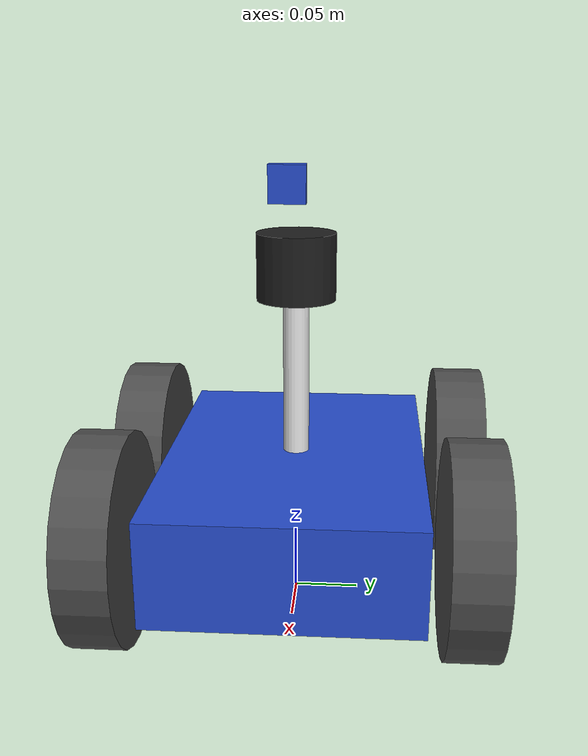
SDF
<sdf version='1.7'>
  <model name='armbot'>
    <link name='base_footprint'>
      <inertial>
        <pose>0.00127 0 0.116548 0 -0 0</pose>
        <mass>0.63</mass>
        <inertia>
          <ixx>0.00750366</ixx>
          <ixy>0</ixy>
          <ixz>-0.000172762</ixz>
          <iyy>0.00896664</iyy>
          <iyz>0</iyz>
          <izz>0.00204336</izz>
        </inertia>
      </inertial>
      <collision name='base_footprint_fixed_joint_lump__base_link_collision'>
        <pose>0 0 0.08 0 -0 0</pose>
        <geometry>
          <box>
            <size>0.3 0.2 0.08</size>
          </box>
        </geometry>
        <surface>
          <contact>
            <ode/>
          </contact>
          <friction>
            <ode/>
          </friction>
        </surface>
      </collision>
      <collision name='base_footprint_fixed_joint_lump__camera_collision_1'>
        <pose>0.08 0 0.3325 0 -0 0</pose>
        <geometry>
          <box>
            <size>0.01 0.025 0.025</size>
          </box>
        </geometry>
        <surface>
          <contact>
            <ode/>
          </contact>
          <friction>
            <ode/>
          </friction>
        </surface>
      </collision>
      <collision name='base_footprint_fixed_joint_lump__support_collision_2'>
        <pose>0 0 0.18 0 -0 0</pose>
        <geometry>
          <cylinder>
            <length>0.12</length>
            <radius>0.01</radius>
          </cylinder>
        </geometry>
        <surface>
          <contact>
            <ode/>
          </contact>
          <friction>
            <ode/>
          </friction>
        </surface>
      </collision>
      <collision name='base_footprint_fixed_joint_lump__laser_collision_3'>
        <pose>0 0 0.265 0 -0 0</pose>
        <geometry>
          <cylinder>
            <length>0.05</length>
            <radius>0.03</radius>
          </cylinder>
        </geometry>
        <surface>
          <contact>
            <ode/>
          </contact>
          <friction>
            <ode/>
          </friction>
        </surface>
      </collision>
      <visual name='base_footprint_fixed_joint_lump__base_link_visual'>
        <pose>0 0 0.08 0 -0 0</pose>
        <geometry>
          <box>
            <size>0.3 0.2 0.08</size>
          </box>
        </geometry>
        <material>
          <script>
            <name>Gazebo/Blue</name>
            <uri>file://media/materials/scripts/gazebo.material</uri>
          </script>
        </material>
      </visual>
      <visual name='base_footprint_fixed_joint_lump__camera_visual_1'>
        <pose>0.08 0 0.3325 0 -0 0</pose>
        <geometry>
          <box>
            <size>0.01 0.025 0.025</size>
          </box>
        </geometry>
        <material>
          <script>
            <name>Gazebo/Blue</name>
            <uri>file://media/materials/scripts/gazebo.material</uri>
          </script>
        </material>
      </visual>
      <visual name='base_footprint_fixed_joint_lump__support_visual_2'>
        <pose>0 0 0.18 0 -0 0</pose>
        <geometry>
          <cylinder>
            <length>0.12</length>
            <radius>0.01</radius>
          </cylinder>
        </geometry>
        <material>
          <script>
            <name>Gazebo/White</name>
            <uri>file://media/materials/scripts/gazebo.material</uri>
          </script>
        </material>
      </visual>
      <visual name='base_footprint_fixed_joint_lump__laser_visual_3'>
        <pose>0 0 0.265 0 -0 0</pose>
        <geometry>
          <cylinder>
            <length>0.05</length>
            <radius>0.03</radius>
          </cylinder>
        </geometry>
        <material>
          <script>
            <name>Gazebo/Black</name>
            <uri>file://media/materials/scripts/gazebo.material</uri>
          </script>
        </material>
      </visual>
      <sensor name='camera_node' type='camera'>
        <update_rate>30</update_rate>
        <camera name='head'>
          <horizontal_fov>1.39626</horizontal_fov>
          <image>
            <width>1280</width>
            <height>720</height>
            <format>R8G8B8</format>
          </image>
          <clip>
            <near>0.02</near>
            <far>300</far>
          </clip>
          <noise>
            <type>gaussian</type>
            <mean>0</mean>
            <stddev>0.007</stddev>
          </noise>
        </camera>
        <plugin name='gazebo_camera' filename='libgazebo_ros_camera.so'>
          <alwaysOn>1</alwaysOn>
          <updateRate>0.0</updateRate>
          <cameraName>camera</cameraName>
          <imageTopicName>image_raw</imageTopicName>
          <cameraInfoTopicName>camera_info</cameraInfoTopicName>
          <frameName>camera</frameName>
          <hackBaseline>0.07</hackBaseline>
          <distortionK1>0.0</distortionK1>
          <distortionK2>0.0</distortionK2>
          <distortionK3>0.0</distortionK3>
          <distortionT1>0.0</distortionT1>
          <distortionT2>0.0</distortionT2>
        </plugin>
        <pose>0.08 0 0.3325 0 -0 0</pose>
      </sensor>
      <sensor name='laser_sensor' type='ray'>
        <visualize>0</visualize>
        <update_rate>40</update_rate>
        <ray>
          <scan>
            <horizontal>
              <samples>720</samples>
              <resolution>1</resolution>
              <min_angle>-2.35619</min_angle>
              <max_angle>2.35619</max_angle>
            </horizontal>
          </scan>
          <range>
            <min>0.1</min>
            <max>12</max>
            <resolution>0.01</resolution>
          </range>
          <noise>
            <type>gaussian</type>
            <mean>0</mean>
            <stddev>0.01</stddev>
          </noise>
        </ray>
        <plugin name='gazebo_ros_laser_controller' filename='libgazebo_ros_laser.so'>
          <topicName>/scan</topicName>
          <frameName>laser</frameName>
        </plugin>
        <pose>0 0 0.265 0 -0 0</pose>
      </sensor>
    </link>
    <joint name='back_left_wheel_joint' type='revolute'>
      <pose relative_to='base_footprint'>-0.09 0.132 0.08 0 -0 0</pose>
      <parent>base_footprint</parent>
      <child>back_left_wheel</child>
      <axis>
        <xyz>0 1 0</xyz>
        <limit>
          <lower>-1e+16</lower>
          <upper>1e+16</upper>
        </limit>
        <dynamics>
          <damping>0</damping>
          <friction>0</friction>
          <spring_reference>0</spring_reference>
          <spring_stiffness>0</spring_stiffness>
        </dynamics>
      </axis>
    </joint>
    <link name='back_left_wheel'>
      <pose relative_to='back_left_wheel_joint'>0 0 0 0 -0 0</pose>
      <inertial>
        <pose>0 0 0 0 -0 0</pose>
        <mass>0.1</mass>
        <inertia>
          <ixx>0.000173333</ixx>
          <ixy>0</ixy>
          <ixz>0</ixz>
          <iyy>0.000173333</iyy>
          <iyz>0</iyz>
          <izz>0.00032</izz>
        </inertia>
      </inertial>
      <collision name='back_left_wheel_collision'>
        <pose>0 0 0 1.5708 -0 0</pose>
        <geometry>
          <cylinder>
            <length>0.04</length>
            <radius>0.08</radius>
          </cylinder>
        </geometry>
        <surface>
          <contact>
            <ode>
              <kp>1e+06</kp>
              <kd>1</kd>
            </ode>
          </contact>
          <friction>
            <ode>
              <mu>1</mu>
              <mu2>1</mu2>
            </ode>
          </friction>
        </surface>
      </collision>
      <visual name='back_left_wheel_visual'>
        <pose>0 0 0 1.5708 -0 0</pose>
        <geometry>
          <cylinder>
            <length>0.04</length>
            <radius>0.08</radius>
          </cylinder>
        </geometry>
        <material>
          <script>
            <name>Gazebo/DarkGrey</name>
            <uri>file://media/materials/scripts/gazebo.material</uri>
          </script>
        </material>
      </visual>
    </link>
    <joint name='back_right_wheel_joint' type='revolute'>
      <pose relative_to='base_footprint'>-0.09 -0.132 0.08 0 -0 0</pose>
      <parent>base_footprint</parent>
      <child>back_right_wheel</child>
      <axis>
        <xyz>0 1 0</xyz>
        <limit>
          <lower>-1e+16</lower>
          <upper>1e+16</upper>
        </limit>
        <dynamics>
          <damping>0</damping>
          <friction>0</friction>
          <spring_reference>0</spring_reference>
          <spring_stiffness>0</spring_stiffness>
        </dynamics>
      </axis>
    </joint>
    <link name='back_right_wheel'>
      <pose relative_to='back_right_wheel_joint'>0 0 0 0 -0 0</pose>
      <inertial>
        <pose>0 0 0 0 -0 0</pose>
        <mass>0.1</mass>
        <inertia>
          <ixx>0.000173333</ixx>
          <ixy>0</ixy>
          <ixz>0</ixz>
          <iyy>0.000173333</iyy>
          <iyz>0</iyz>
          <izz>0.00032</izz>
        </inertia>
      </inertial>
      <collision name='back_right_wheel_collision'>
        <pose>0 0 0 1.5708 -0 0</pose>
        <geometry>
          <cylinder>
            <length>0.04</length>
            <radius>0.08</radius>
          </cylinder>
        </geometry>
        <surface>
          <contact>
            <ode>
              <kp>1e+06</kp>
              <kd>1</kd>
            </ode>
          </contact>
          <friction>
            <ode>
              <mu>1</mu>
              <mu2>1</mu2>
            </ode>
          </friction>
        </surface>
      </collision>
      <visual name='back_right_wheel_visual'>
        <pose>0 0 0 1.5708 -0 0</pose>
        <geometry>
          <cylinder>
            <length>0.04</length>
            <radius>0.08</radius>
          </cylinder>
        </geometry>
        <material>
          <script>
            <name>Gazebo/DarkGrey</name>
            <uri>file://media/materials/scripts/gazebo.material</uri>
          </script>
        </material>
      </visual>
    </link>
    <joint name='front_left_wheel_joint' type='revolute'>
      <pose relative_to='base_footprint'>0.09 0.132 0.08 0 -0 0</pose>
      <parent>base_footprint</parent>
      <child>front_left_wheel</child>
      <axis>
        <xyz>0 1 0</xyz>
        <limit>
          <lower>-1e+16</lower>
          <upper>1e+16</upper>
        </limit>
        <dynamics>
          <damping>0</damping>
          <friction>0</friction>
          <spring_reference>0</spring_reference>
          <spring_stiffness>0</spring_stiffness>
        </dynamics>
      </axis>
    </joint>
    <link name='front_left_wheel'>
      <pose relative_to='front_left_wheel_joint'>0 0 0 0 -0 0</pose>
      <inertial>
        <pose>0 0 0 0 -0 0</pose>
        <mass>0.1</mass>
        <inertia>
          <ixx>0.000173333</ixx>
          <ixy>0</ixy>
          <ixz>0</ixz>
          <iyy>0.000173333</iyy>
          <iyz>0</iyz>
          <izz>0.00032</izz>
        </inertia>
      </inertial>
      <collision name='front_left_wheel_collision'>
        <pose>0 0 0 1.5708 -0 0</pose>
        <geometry>
          <cylinder>
            <length>0.04</length>
            <radius>0.08</radius>
          </cylinder>
        </geometry>
        <surface>
          <contact>
            <ode>
              <kp>1e+06</kp>
              <kd>1</kd>
            </ode>
          </contact>
          <friction>
            <ode>
              <mu>1</mu>
              <mu2>1</mu2>
            </ode>
          </friction>
        </surface>
      </collision>
      <visual name='front_left_wheel_visual'>
        <pose>0 0 0 1.5708 -0 0</pose>
        <geometry>
          <cylinder>
            <length>0.04</length>
            <radius>0.08</radius>
          </cylinder>
        </geometry>
        <material>
          <script>
            <name>Gazebo/DarkGrey</name>
            <uri>file://media/materials/scripts/gazebo.material</uri>
          </script>
        </material>
      </visual>
    </link>
    <joint name='front_right_wheel_joint' type='revolute'>
      <pose relative_to='base_footprint'>0.09 -0.132 0.08 0 -0 0</pose>
      <parent>base_footprint</parent>
      <child>front_right_wheel</child>
      <axis>
        <xyz>0 1 0</xyz>
        <limit>
          <lower>-1e+16</lower>
          <upper>1e+16</upper>
        </limit>
        <dynamics>
          <damping>0</damping>
          <friction>0</friction>
          <spring_reference>0</spring_reference>
          <spring_stiffness>0</spring_stiffness>
        </dynamics>
      </axis>
    </joint>
    <link name='front_right_wheel'>
      <pose relative_to='front_right_wheel_joint'>0 0 0 0 -0 0</pose>
      <inertial>
        <pose>0 0 0 0 -0 0</pose>
        <mass>0.1</mass>
        <inertia>
          <ixx>0.000173333</ixx>
          <ixy>0</ixy>
          <ixz>0</ixz>
          <iyy>0.000173333</iyy>
          <iyz>0</iyz>
          <izz>0.00032</izz>
        </inertia>
      </inertial>
      <collision name='front_right_wheel_collision'>
        <pose>0 0 0 1.5708 -0 0</pose>
        <geometry>
          <cylinder>
            <length>0.04</length>
            <radius>0.08</radius>
          </cylinder>
        </geometry>
        <surface>
          <contact>
            <ode>
              <kp>1e+06</kp>
              <kd>1</kd>
            </ode>
          </contact>
          <friction>
            <ode>
              <mu>1</mu>
              <mu2>1</mu2>
            </ode>
          </friction>
        </surface>
      </collision>
      <visual name='front_right_wheel_visual'>
        <pose>0 0 0 1.5708 -0 0</pose>
        <geometry>
          <cylinder>
            <length>0.04</length>
            <radius>0.08</radius>
          </cylinder>
        </geometry>
        <material>
          <script>
            <name>Gazebo/DarkGrey</name>
            <uri>file://media/materials/scripts/gazebo.material</uri>
          </script>
        </material>
      </visual>
    </link>
    <plugin name='mobile_base_controller' filename='libgazebo_ros_skid_steer_drive.so'>
      <updateRate>100.0</updateRate>
      <robotNamespace>/</robotNamespace>
      <leftFrontJoint>front_left_wheel_joint</leftFrontJoint>
      <rightFrontJoint>front_right_wheel_joint</rightFrontJoint>
      <leftRearJoint>back_left_wheel_joint</leftRearJoint>
      <rightRearJoint>back_right_wheel_joint</rightRearJoint>
      <wheelSeparation>0.26400000000000007</wheelSeparation>
      <wheelDiameter>0.16</wheelDiameter>
      <robotBaseFrame>base_footprint</robotBaseFrame>
      <torque>20</torque>
      <commandTopic>/cmd_vel</commandTopic>
      <odometryTopic>/odom</odometryTopic>
      <odometryFrame>odom</odometryFrame>
      <broadcastTF>1</broadcastTF>
      <odometryRate>30.0</odometryRate>
      <covariance_x>0.001</covariance_x>
      <covariance_y>0.001</covariance_y>
      <covariance_yaw>0.01</covariance_yaw>
    </plugin>
    <frame name='camera2base_link' attached_to='base_link'>
      <pose>0.08 0 0.2525 0 -0 0</pose>
    </frame>
    <frame name='camera' attached_to='camera2base_link'/>
    <frame name='laser2support' attached_to='support'>
      <pose>0 0 0.085 0 -0 0</pose>
    </frame>
    <frame name='laser' attached_to='laser2support'/>
    <frame name='support2base_link' attached_to='base_link'>
      <pose>0 0 0.1 0 -0 0</pose>
    </frame>
    <frame name='support' attached_to='support2base_link'/>
    <frame name='base_link2base_footprint' attached_to='base_footprint'>
      <pose>0 0 0.08 0 -0 0</pose>
    </frame>
    <frame name='base_link' attached_to='base_link2base_footprint'/>
  </model>
</sdf>
